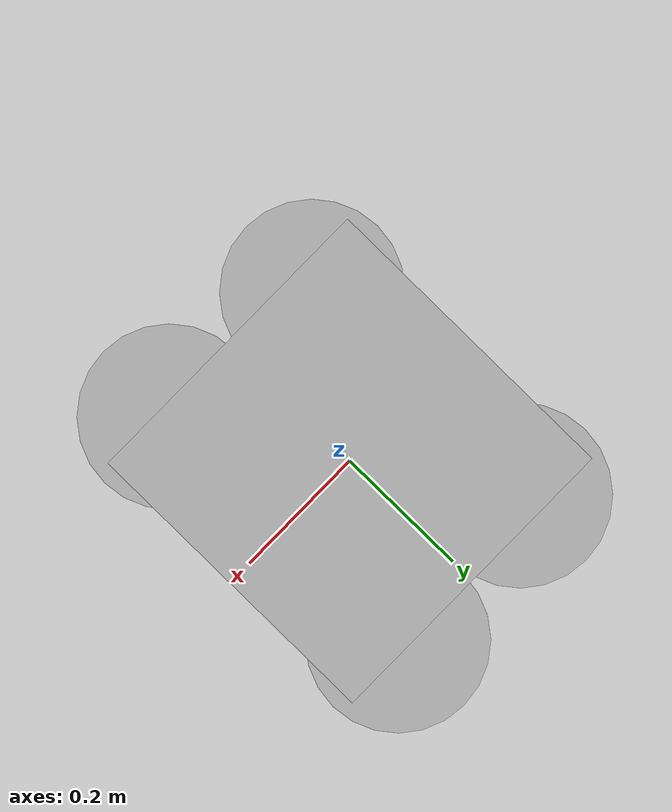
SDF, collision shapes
<?xml version='1.0' encoding='utf-8'?>
<sdf version="1.6">
  <model name="iris">
    <link name="base_link">
      <pose>0 0 0 0 0 0</pose>
      <inertial>
        <pose>0 0 0 0 0 0</pose>
        <mass>0.275</mass>
        <inertia>
          <ixx>0.00186885417</ixx>
          <ixy>0</ixy>
          <ixz>0</ixz>
          <iyy>0.00186885417</iyy>
          <iyz>0</iyz>
          <izz>0.00354360417</izz>
          </inertia>
        </inertial>
      <collision name="base_link_inertia_collision">
        <pose>0 0 0 0 0 0</pose>
        <geometry>
          <box>
            <size>0.47 0.47 0.066</size>
            </box>
          </geometry>
        <surface>
          <contact>
            <ode>
              <min_depth>0.001</min_depth>
              <max_vel>0</max_vel>
              </ode>
            </contact>
          <friction>
            <ode />
            </friction>
          </surface>
        </collision>
      <gravity>1</gravity>
      <velocity_decay />
      <visual name="fs150_photo_base_link">
        <pose>0 0 0 0 0 0</pose>
        <geometry>
          <mesh>
            <uri>model://fs150_lod10k/meshes/base_link.dae</uri>
            <scale>1 1 1</scale>
            </mesh>
          </geometry>
        </visual>
      <visual name="fs150_photo_rotor_0">
        <pose>0.045 -0.0536190265 0.023 0 0 0</pose>
        <geometry>
          <mesh>
            <uri>model://fs150_lod10k/meshes/rotor_0.dae</uri>
            <scale>1 1 1</scale>
            </mesh>
          </geometry>
        </visual>
      <visual name="fs150_photo_rotor_1">
        <pose>-0.045 0.0536190265 0.023 0 0 0</pose>
        <geometry>
          <mesh>
            <uri>model://fs150_lod10k/meshes/rotor_1.dae</uri>
            <scale>1 1 1</scale>
            </mesh>
          </geometry>
        </visual>
      <visual name="fs150_photo_rotor_2">
        <pose>0.045 0.0536190265 0.023 0 0 0</pose>
        <geometry>
          <mesh>
            <uri>model://fs150_lod10k/meshes/rotor_2.dae</uri>
            <scale>1 1 1</scale>
            </mesh>
          </geometry>
        </visual>
      <visual name="fs150_photo_rotor_3">
        <pose>-0.045 -0.0536190265 0.023 0 0 0</pose>
        <geometry>
          <mesh>
            <uri>model://fs150_lod10k/meshes/rotor_3.dae</uri>
            <scale>1 1 1</scale>
            </mesh>
          </geometry>
        </visual>
      </link>
    <link name="/imu_link">
      <pose>0 0 0 0 0 0</pose>
      <inertial>
        <pose>0 0 0 0 0 0</pose>
        <mass>0.015</mass>
        <inertia>
          <ixx>1e-05</ixx>
          <ixy>0</ixy>
          <ixz>0</ixz>
          <iyy>1e-05</iyy>
          <iyz>0</iyz>
          <izz>1e-05</izz>
          </inertia>
        </inertial>
      </link>
    <joint name="/imu_joint" type="revolute">
      <child>/imu_link</child>
      <parent>base_link</parent>
      <axis>
        <xyz>1 0 0</xyz>
        <limit>
          <lower>0</lower>
          <upper>0</upper>
          <effort>0</effort>
          <velocity>0</velocity>
          </limit>
        <dynamics>
          <spring_reference>0</spring_reference>
          <spring_stiffness>0</spring_stiffness>
          </dynamics>
        <use_parent_model_frame>1</use_parent_model_frame>
        </axis>
      </joint>
    <link name="rotor_0">
      <pose>0.13 -0.22 0.023 0 0 0</pose>
      <inertial>
        <pose>0 0 0 0 0 0</pose>
        <mass>0.005</mass>
        <inertia>
          <ixx>3.4125e-07</ixx>
          <ixy>0</ixy>
          <ixz>0</ixz>
          <iyy>9.55864e-05</iyy>
          <iyz>0</iyz>
          <izz>9.59014e-05</izz>
          </inertia>
        </inertial>
      <collision name="rotor_0_collision">
        <pose>0 0 0 0 0 0</pose>
        <geometry>
          <cylinder>
            <length>0.005</length>
            <radius>0.128</radius>
            </cylinder>
          </geometry>
        <surface>
          <contact>
            <ode />
            </contact>
          <friction>
            <ode />
            </friction>
          </surface>
        </collision>
      <gravity>1</gravity>
      <velocity_decay />
      </link>
    <joint name="rotor_0_joint" type="revolute">
      <child>rotor_0</child>
      <parent>base_link</parent>
      <axis>
        <xyz>0 0 1</xyz>
        <limit>
          <lower>-1e+16</lower>
          <upper>1e+16</upper>
          </limit>
        <dynamics>
          <spring_reference>0</spring_reference>
          <spring_stiffness>0</spring_stiffness>
          </dynamics>
        <use_parent_model_frame>1</use_parent_model_frame>
        </axis>
      </joint>
    <link name="rotor_1">
      <pose>-0.13 0.2 0.023 0 0 0</pose>
      <inertial>
        <pose>0 0 0 0 0 0</pose>
        <mass>0.005</mass>
        <inertia>
          <ixx>3.4125e-07</ixx>
          <ixy>0</ixy>
          <ixz>0</ixz>
          <iyy>9.55864e-05</iyy>
          <iyz>0</iyz>
          <izz>9.59014e-05</izz>
          </inertia>
        </inertial>
      <collision name="rotor_1_collision">
        <pose>0 0 0 0 0 0</pose>
        <geometry>
          <cylinder>
            <length>0.005</length>
            <radius>0.128</radius>
            </cylinder>
          </geometry>
        <surface>
          <contact>
            <ode />
            </contact>
          <friction>
            <ode />
            </friction>
          </surface>
        </collision>
      <gravity>1</gravity>
      <velocity_decay />
      </link>
    <joint name="rotor_1_joint" type="revolute">
      <child>rotor_1</child>
      <parent>base_link</parent>
      <axis>
        <xyz>0 0 1</xyz>
        <limit>
          <lower>-1e+16</lower>
          <upper>1e+16</upper>
          </limit>
        <dynamics>
          <spring_reference>0</spring_reference>
          <spring_stiffness>0</spring_stiffness>
          </dynamics>
        <use_parent_model_frame>1</use_parent_model_frame>
        </axis>
      </joint>
    <link name="rotor_2">
      <pose>0.13 0.22 0.023 0 0 0</pose>
      <inertial>
        <pose>0 0 0 0 0 0</pose>
        <mass>0.005</mass>
        <inertia>
          <ixx>3.4125e-07</ixx>
          <ixy>0</ixy>
          <ixz>0</ixz>
          <iyy>9.55864e-05</iyy>
          <iyz>0</iyz>
          <izz>9.59014e-05</izz>
          </inertia>
        </inertial>
      <collision name="rotor_2_collision">
        <pose>0 0 0 0 0 0</pose>
        <geometry>
          <cylinder>
            <length>0.005</length>
            <radius>0.128</radius>
            </cylinder>
          </geometry>
        <surface>
          <contact>
            <ode />
            </contact>
          <friction>
            <ode />
            </friction>
          </surface>
        </collision>
      <gravity>1</gravity>
      <velocity_decay />
      </link>
    <joint name="rotor_2_joint" type="revolute">
      <child>rotor_2</child>
      <parent>base_link</parent>
      <axis>
        <xyz>0 0 1</xyz>
        <limit>
          <lower>-1e+16</lower>
          <upper>1e+16</upper>
          </limit>
        <dynamics>
          <spring_reference>0</spring_reference>
          <spring_stiffness>0</spring_stiffness>
          </dynamics>
        <use_parent_model_frame>1</use_parent_model_frame>
        </axis>
      </joint>
    <link name="rotor_3">
      <pose>-0.13 -0.2 0.023 0 0 0</pose>
      <inertial>
        <pose>0 0 0 0 0 0</pose>
        <mass>0.005</mass>
        <inertia>
          <ixx>3.4125e-07</ixx>
          <ixy>0</ixy>
          <ixz>0</ixz>
          <iyy>9.55864e-05</iyy>
          <iyz>0</iyz>
          <izz>9.59014e-05</izz>
          </inertia>
        </inertial>
      <collision name="rotor_3_collision">
        <pose>0 0 0 0 0 0</pose>
        <geometry>
          <cylinder>
            <length>0.005</length>
            <radius>0.128</radius>
            </cylinder>
          </geometry>
        <surface>
          <contact>
            <ode />
            </contact>
          <friction>
            <ode />
            </friction>
          </surface>
        </collision>
      <gravity>1</gravity>
      <velocity_decay />
      </link>
    <joint name="rotor_3_joint" type="revolute">
      <child>rotor_3</child>
      <parent>base_link</parent>
      <axis>
        <xyz>0 0 1</xyz>
        <limit>
          <lower>-1e+16</lower>
          <upper>1e+16</upper>
          </limit>
        <dynamics>
          <spring_reference>0</spring_reference>
          <spring_stiffness>0</spring_stiffness>
          </dynamics>
        <use_parent_model_frame>1</use_parent_model_frame>
        </axis>
      </joint>
    <plugin name="rosbag" filename="libgazebo_multirotor_base_plugin.so">
      <robotNamespace />
      <linkName>base_link</linkName>
      <rotorVelocitySlowdownSim>10</rotorVelocitySlowdownSim>
      </plugin>
    <plugin name="front_right_motor_model" filename="libgazebo_motor_model.so">
      <robotNamespace />
      <jointName>rotor_0_joint</jointName>
      <linkName>rotor_0</linkName>
      <turningDirection>ccw</turningDirection>
      <timeConstantUp>0.006</timeConstantUp>
      <timeConstantDown>0.012</timeConstantDown>
      <maxRotVelocity>1100</maxRotVelocity>
      <motorConstant>5.33969944334e-06</motorConstant>
      <momentConstant>0.06</momentConstant>
      <commandSubTopic>/gazebo/command/motor_speed</commandSubTopic>
      <motorNumber>0</motorNumber>
      <rotorDragCoefficient>2e-05</rotorDragCoefficient>
      <rollingMomentCoefficient>1e-07</rollingMomentCoefficient>
      <motorSpeedPubTopic>/motor_speed/0</motorSpeedPubTopic>
      <rotorVelocitySlowdownSim>10</rotorVelocitySlowdownSim>
      </plugin>
    <plugin name="back_left_motor_model" filename="libgazebo_motor_model.so">
      <robotNamespace />
      <jointName>rotor_1_joint</jointName>
      <linkName>rotor_1</linkName>
      <turningDirection>ccw</turningDirection>
      <timeConstantUp>0.006</timeConstantUp>
      <timeConstantDown>0.012</timeConstantDown>
      <maxRotVelocity>1100</maxRotVelocity>
      <motorConstant>5.33969944334e-06</motorConstant>
      <momentConstant>0.06</momentConstant>
      <commandSubTopic>/gazebo/command/motor_speed</commandSubTopic>
      <motorNumber>1</motorNumber>
      <rotorDragCoefficient>2e-05</rotorDragCoefficient>
      <rollingMomentCoefficient>1e-07</rollingMomentCoefficient>
      <motorSpeedPubTopic>/motor_speed/1</motorSpeedPubTopic>
      <rotorVelocitySlowdownSim>10</rotorVelocitySlowdownSim>
      </plugin>
    <plugin name="front_left_motor_model" filename="libgazebo_motor_model.so">
      <robotNamespace />
      <jointName>rotor_2_joint</jointName>
      <linkName>rotor_2</linkName>
      <turningDirection>cw</turningDirection>
      <timeConstantUp>0.006</timeConstantUp>
      <timeConstantDown>0.012</timeConstantDown>
      <maxRotVelocity>1100</maxRotVelocity>
      <motorConstant>5.33969944334e-06</motorConstant>
      <momentConstant>0.06</momentConstant>
      <commandSubTopic>/gazebo/command/motor_speed</commandSubTopic>
      <motorNumber>2</motorNumber>
      <rotorDragCoefficient>2e-05</rotorDragCoefficient>
      <rollingMomentCoefficient>1e-07</rollingMomentCoefficient>
      <motorSpeedPubTopic>/motor_speed/2</motorSpeedPubTopic>
      <rotorVelocitySlowdownSim>10</rotorVelocitySlowdownSim>
      </plugin>
    <plugin name="back_right_motor_model" filename="libgazebo_motor_model.so">
      <robotNamespace />
      <jointName>rotor_3_joint</jointName>
      <linkName>rotor_3</linkName>
      <turningDirection>cw</turningDirection>
      <timeConstantUp>0.006</timeConstantUp>
      <timeConstantDown>0.012</timeConstantDown>
      <maxRotVelocity>1100</maxRotVelocity>
      <motorConstant>5.33969944334e-06</motorConstant>
      <momentConstant>0.06</momentConstant>
      <commandSubTopic>/gazebo/command/motor_speed</commandSubTopic>
      <motorNumber>3</motorNumber>
      <rotorDragCoefficient>2e-05</rotorDragCoefficient>
      <rollingMomentCoefficient>1e-07</rollingMomentCoefficient>
      <motorSpeedPubTopic>/motor_speed/3</motorSpeedPubTopic>
      <rotorVelocitySlowdownSim>10</rotorVelocitySlowdownSim>
      </plugin>
    <plugin name="groundtruth_plugin" filename="libgazebo_groundtruth_plugin.so">
      <robotNamespace />
      </plugin>
    <plugin name="magnetometer_plugin" filename="libgazebo_magnetometer_plugin.so">
      <robotNamespace />
      <pubRate>100</pubRate>
      <noiseDensity>0.0004</noiseDensity>
      <randomWalk>6.4e-06</randomWalk>
      <biasCorrelationTime>600</biasCorrelationTime>
      <magTopic>/mag</magTopic>
      </plugin>
    <plugin name="barometer_plugin" filename="libgazebo_barometer_plugin.so">
      <robotNamespace />
      <pubRate>50</pubRate>
      <baroTopic>/baro</baroTopic>
      <baroDriftPaPerSec>0</baroDriftPaPerSec>
      </plugin>
    <plugin name="mavlink_interface" filename="libgazebo_mavlink_interface.so">
      <robotNamespace />
      <imuSubTopic>/imu</imuSubTopic>
      <magSubTopic>/mag</magSubTopic>
      <baroSubTopic>/baro</baroSubTopic>
      <mavlink_addr>INADDR_ANY</mavlink_addr>
      <mavlink_tcp_port>4560</mavlink_tcp_port>
      <mavlink_udp_port>14560</mavlink_udp_port>
      <serialEnabled>0</serialEnabled>
      <serialDevice>/dev/ttyACM0</serialDevice>
      <baudRate>921600</baudRate>
      <qgc_addr>INADDR_ANY</qgc_addr>
      <qgc_udp_port>14550</qgc_udp_port>
      <sdk_addr>INADDR_ANY</sdk_addr>
      <sdk_udp_port>14540</sdk_udp_port>
      <hil_mode>0</hil_mode>
      <hil_state_level>0</hil_state_level>
      <send_vision_estimation>0</send_vision_estimation>
      <send_odometry>1</send_odometry>
      <enable_lockstep>1</enable_lockstep>
      <use_tcp>1</use_tcp>
      <motorSpeedCommandPubTopic>/gazebo/command/motor_speed</motorSpeedCommandPubTopic>
      <control_channels>
        <channel name="rotor1">
          <input_index>0</input_index>
          <input_offset>0</input_offset>
          <input_scaling>1000</input_scaling>
          <zero_position_disarmed>0</zero_position_disarmed>
          <zero_position_armed>100</zero_position_armed>
          <joint_control_type>velocity</joint_control_type>
          </channel>
        <channel name="rotor2">
          <input_index>1</input_index>
          <input_offset>0</input_offset>
          <input_scaling>1000</input_scaling>
          <zero_position_disarmed>0</zero_position_disarmed>
          <zero_position_armed>100</zero_position_armed>
          <joint_control_type>velocity</joint_control_type>
          </channel>
        <channel name="rotor3">
          <input_index>2</input_index>
          <input_offset>0</input_offset>
          <input_scaling>1000</input_scaling>
          <zero_position_disarmed>0</zero_position_disarmed>
          <zero_position_armed>100</zero_position_armed>
          <joint_control_type>velocity</joint_control_type>
          </channel>
        <channel name="rotor4">
          <input_index>3</input_index>
          <input_offset>0</input_offset>
          <input_scaling>1000</input_scaling>
          <zero_position_disarmed>0</zero_position_disarmed>
          <zero_position_armed>100</zero_position_armed>
          <joint_control_type>velocity</joint_control_type>
          </channel>
        <channel name="rotor5">
          <input_index>4</input_index>
          <input_offset>1</input_offset>
          <input_scaling>324.6</input_scaling>
          <zero_position_disarmed>0</zero_position_disarmed>
          <zero_position_armed>0</zero_position_armed>
          <joint_control_type>velocity</joint_control_type>
          <joint_control_pid>
            <p>0.1</p>
            <i>0</i>
            <d>0</d>
            <iMax>0.0</iMax>
            <iMin>0.0</iMin>
            <cmdMax>2</cmdMax>
            <cmdMin>-2</cmdMin>
            </joint_control_pid>
          <joint_name>zephyr_delta_wing::propeller_joint</joint_name>
          </channel>
        <channel name="rotor6">
          <input_index>5</input_index>
          <input_offset>0</input_offset>
          <input_scaling>0.524</input_scaling>
          <zero_position_disarmed>0</zero_position_disarmed>
          <zero_position_armed>0</zero_position_armed>
          <joint_control_type>position</joint_control_type>
          <joint_name>zephyr_delta_wing::flap_left_joint</joint_name>
          <joint_control_pid>
            <p>10.0</p>
            <i>0</i>
            <d>0</d>
            <iMax>0</iMax>
            <iMin>0</iMin>
            <cmdMax>20</cmdMax>
            <cmdMin>-20</cmdMin>
            </joint_control_pid>
          </channel>
        <channel name="rotor7">
          <input_index>6</input_index>
          <input_offset>0</input_offset>
          <input_scaling>0.524</input_scaling>
          <zero_position_disarmed>0</zero_position_disarmed>
          <zero_position_armed>0</zero_position_armed>
          <joint_control_type>position</joint_control_type>
          <joint_name>zephyr_delta_wing::flap_right_joint</joint_name>
          <joint_control_pid>
            <p>10.0</p>
            <i>0</i>
            <d>0</d>
            <iMax>0</iMax>
            <iMin>0</iMin>
            <cmdMax>20</cmdMax>
            <cmdMin>-20</cmdMin>
            </joint_control_pid>
          </channel>
        <channel name="rotor8">
          <input_index>7</input_index>
          <input_offset>0</input_offset>
          <input_scaling>0.524</input_scaling>
          <zero_position_disarmed>0</zero_position_disarmed>
          <zero_position_armed>0</zero_position_armed>
          <joint_control_type>position</joint_control_type>
          </channel>
        </control_channels>
      </plugin>
    <static>0</static>
    <plugin name="rotors_gazebo_imu_plugin" filename="libgazebo_imu_plugin.so">
      <robotNamespace />
      <linkName>/imu_link</linkName>
      <imuTopic>/imu</imuTopic>
      <gyroscopeNoiseDensity>0.00018665</gyroscopeNoiseDensity>
      <gyroscopeRandomWalk>3.8785e-05</gyroscopeRandomWalk>
      <gyroscopeBiasCorrelationTime>1000.0</gyroscopeBiasCorrelationTime>
      <gyroscopeTurnOnBiasSigma>0.0087</gyroscopeTurnOnBiasSigma>
      <accelerometerNoiseDensity>0.00186</accelerometerNoiseDensity>
      <accelerometerRandomWalk>0.006</accelerometerRandomWalk>
      <accelerometerBiasCorrelationTime>300.0</accelerometerBiasCorrelationTime>
      <accelerometerTurnOnBiasSigma>0.196</accelerometerTurnOnBiasSigma>
      </plugin>
    </model>
  </sdf>
